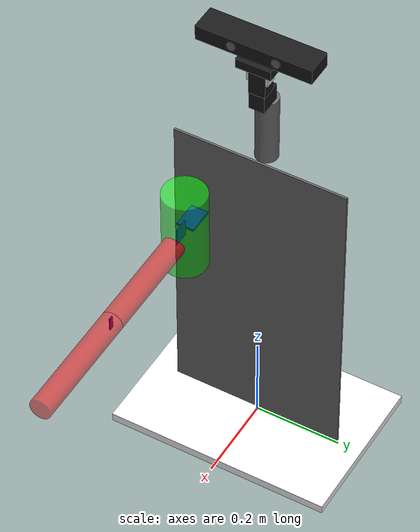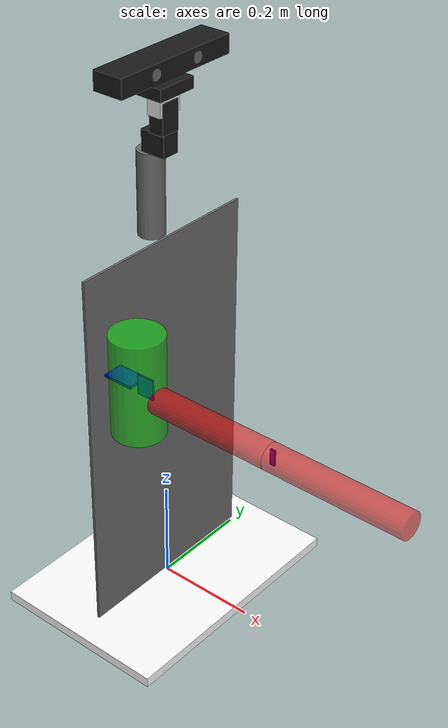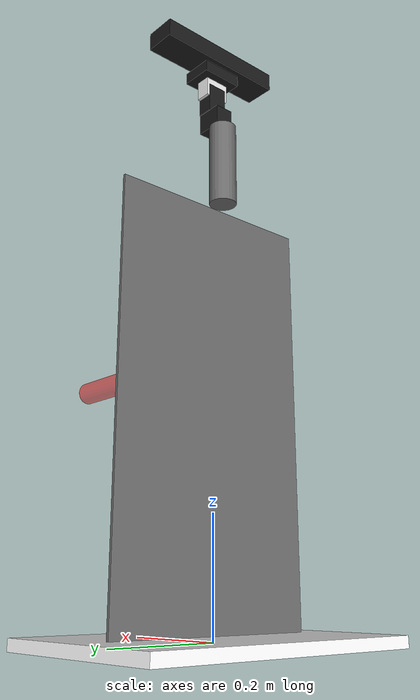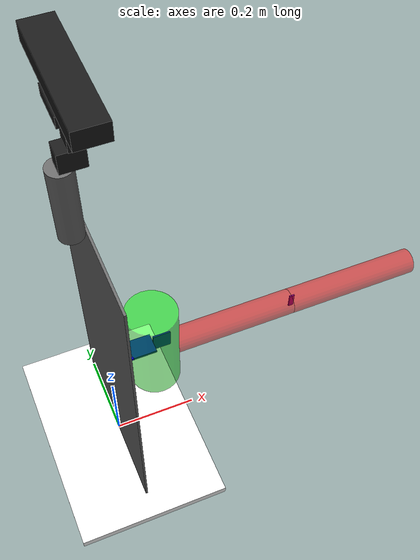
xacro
<?xml version="1.0"?>

<!-- XML namespaces -->
<robot xmlns:sensor="http://playerstage.sourceforge.net/gazebo/xmlschema/#sensor"
       xmlns:controller="http://playerstage.sourceforge.net/gazebo/xmlschema/#controller"
       xmlns:interface="http://playerstage.sourceforge.net/gazebo/xmlschema/#interface"
       xmlns:xacro="http://ros.org/wiki/xacro"
	   name="pi_robot">

	<xacro:macro name="white">
		<material name="white">
			<color rgba="1.0 1.0 1.0 1.0"/>
		</material>
	</xacro:macro>

	<xacro:macro name="black">
		<material name="black">
			<color rgba="0.1 0.1 0.1 1.0"/>
		</material>
	</xacro:macro>

	<xacro:macro name="grey1">
		<material name="grey1">
			<color rgba="0.41 0.41 0.41 1.0"/>
		</material>
	</xacro:macro>

	<xacro:macro name="blue1">
		<material name="blue1">
			<color rgba="0 0 .8 1"/>
		</material>
	</xacro:macro>

	<xacro:macro name="green1">
		<material name="green1">
			<color rgba="0 1 0 0.5"/>
		</material>
	</xacro:macro>

	<xacro:macro name="red1">
	  <material name="red1">
	    <color rgba="1 0 0 0.5"/>
		</material>
	</xacro:macro>

	<xacro:macro name="ax12_color">
		<material name="ax12_color">
			<color rgba="0.1 0.1 0.1 1.0"/>
		</material>
	</xacro:macro>

	<xacro:macro name="bracket_color">
		<material name="bracket_color">
			<color rgba="0.9 0.9 0.9 1.0"/>
		</material>
	</xacro:macro>

	<xacro:macro name="my_box" params="name lwh xyz rpy mass material *rviz_color">
		<link name="${name}">
			<visual>
				<origin xyz="${xyz}" rpy="${rpy}" />
				<geometry>
					<box size="${lwh}" />
				</geometry>
			    <xacro:insert_block name="rviz_color" />
             </visual>
             <collision>
				<origin xyz="${xyz}" rpy="${rpy}" />
					<geometry>
						<box size="${lwh}" />
					</geometry>
             </collision>
             <xacro:default_inertial mass="${mass}" />
        </link>
        <xacro:default_gazebo name="${name}" material="${material}" />
	</xacro:macro>

	<xacro:macro name="my_cylinder" params="name l r xyz rpy mass material *rviz_color">
		<link name="${name}">
			<visual>
				<origin xyz="${xyz}" rpy="${rpy}" />
				<geometry>
					<cylinder length="${l}" radius="${r}"/>
				</geometry>
				<xacro:insert_block name="rviz_color" />
			</visual>
			<collision>
				<origin xyz="${xyz}" rpy="${rpy}" />
					<geometry>
						<cylinder length="${l}" radius="${r}" />
					</geometry>
			</collision>
			<xacro:default_inertial mass="${mass}" />
		</link>
        <xacro:default_gazebo name="${name}" material="${material}" />
	</xacro:macro>

    <xacro:macro name="default_gazebo" params="name material">
 		<gazebo reference="${name}">
			<material>${material}</material>
			<selfCollide>false</selfCollide>
			<turnGravityOff>true</turnGravityOff>
		</gazebo>
    </xacro:macro>

 	<!-- ============================   Body   ============================ -->

	<xacro:my_box name="base_link" lwh="0.36 0.52 0.02" xyz="0 0 0" rpy="0 0 0" mass="0.5" material="Gazebo/WhiteEmissive">
		<xacro:white />
	</xacro:my_box>

 	<xacro:my_box name="torso_link" lwh="0.005 0.4 0.75" xyz="0 0 0" rpy="0 0 0" mass="0.5" material="Gazebo/WhiteEmissive">
		<xacro:grey1 />
	</xacro:my_box>

	<xacro:my_box name="shoulder_pan_support_link" lwh="0.06 0.04 0.005" xyz="0 0 0" rpy="0 0 0" mass="0.5" material="Gazebo/WhiteEmissive">
		<xacro:blue1 />
	</xacro:my_box>

 	<xacro:my_cylinder name="shoulder_pan_link" l="0.2" r="0.05" xyz="0 0 0" rpy="0 0 0" mass="0.5" material="Gazebo/WhiteEmissive">
		<xacro:green1 />
	</xacro:my_cylinder>

	<xacro:my_box name="shoulder_tilt_support_link" lwh="0.035 0.003 0.04" xyz="0 0 0" rpy="0 0 0" mass="0.5" material="Gazebo/WhiteEmissive">
		<xacro:blue1 />
	</xacro:my_box>

	<xacro:my_box name="shoulder_tilt_link" lwh="0.01 0.003 0.03" xyz="0 0 -0.015" rpy="0 0 0" mass="0.5" material="Gazebo/WhiteEmissive">
		<xacro:red1 />
	</xacro:my_box>

	<xacro:my_cylinder name="upper_arm_link" l="0.27" r="0.025" xyz="0.135 0 0" rpy="0 1.57 0" mass="0.5" material="Gazebo/WhiteEmissive">
		<xacro:red1 />
	</xacro:my_cylinder>

	<xacro:my_box name="elbow_tilt_link" lwh="0.01 0.003 0.03" xyz="0.005 0 0" rpy="0 0 0" mass="0.5" material="Gazebo/WhiteEmissive">
		<xacro:blue1 />
	</xacro:my_box>

	<xacro:my_cylinder name="forearm_link" l="0.27" r="0.025" xyz="0.135 0 0" rpy="0 1.57 0" mass="0.5" material="Gazebo/WhiteEmissive">
		<xacro:red1 />
	</xacro:my_cylinder>

	<!-- head links -->
	<xacro:my_cylinder name="lower_neck_link" l="0.16" r="0.025" xyz="0 0 0" rpy="0 0 0" mass="0.05" material="Gazebo/WhiteEmissive">
		<xacro:grey1 />
	</xacro:my_cylinder>

	<xacro:my_box name="upper_neck_link" lwh="0.028 0.048 0.037" xyz="0 0 0.01" rpy="0 0 0" mass="0.05" material="Gazebo/WhiteEmissive">
		<xacro:bracket_color />
	</xacro:my_box>

	<xacro:my_box name="head_pan_link" lwh="0.05 0.035 0.04" xyz="0 0 0" rpy="0 0 0" mass="0.055" material="Gazebo/FlatBlack">
		<xacro:ax12_color />
	</xacro:my_box>

	<xacro:my_box name="head_tilt_link" lwh="0.03 0.038 0.057" xyz="0 0 0" rpy="0 0 0" mass="0.055" material="Gazebo/FlatBlack">
		<xacro:ax12_color />
	</xacro:my_box>

	<xacro:my_box name="head_base_link" lwh="0.06 0.08 0.022" xyz="0 0 00" rpy="0 0 0" mass="0.1" material="Gazebo/FlatBlack">
		<xacro:black />
	</xacro:my_box>

	<xacro:my_cylinder name="head_post_link" l="0.012" r="0.005" xyz="0 0 00" rpy="0 0 0" mass="0.1" material="Gazebo/WhiteEmissive">
		<xacro:grey1 />
	</xacro:my_cylinder>

	<xacro:my_box name="head_link" lwh="0.06 0.26 0.035" xyz="0 0 00" rpy="0 0 0" mass="0.8" material="Gazebo/FlatBlack">
		<xacro:black />
	</xacro:my_box>

	<xacro:my_cylinder name="left_eye_link" l="0.01" r="0.01" xyz="0 0 00" rpy="0 0 0" mass="0.001" material="Gazebo/WhiteEmissive">
		<xacro:grey1 />
	</xacro:my_cylinder>

	<xacro:my_cylinder name="right_eye_link" l="0.01" r="0.01" xyz="0 0 00" rpy="0 0 0" mass="0.001" material="Gazebo/WhiteEmissive">
		<xacro:grey1 />
	</xacro:my_cylinder>
 	<!-- ============================   Arms   ============================ -->

	<!-- =================== Joint Definitions ==================== -->

	<!-- head joints -->
	<joint name="lower_neck_joint" type="fixed">
    	<parent link="torso_link" />
    	<child link="lower_neck_link" />
    	<origin xyz="-0.0275 0 0.455" rpy="0 0 0" />
	</joint>

	<joint name="head_pan_servo_joint" type="fixed">
    	<parent link="lower_neck_link" />
    	<child link="head_pan_link" />
    	<origin xyz="0.02 0 0.1" rpy="0 0 0" />
	</joint>

	<joint name="head_pan_joint" type="revolute">
    	<parent link="head_pan_link" />
    	<child link="head_tilt_link" />
    	<origin xyz="0.01 0 0.048" rpy="0 0 0" />
    	<axis xyz="0 0 1" />
    	<limit lower="-3.1416" upper="3.1416" effort="10" velocity="3" />
      	<dynamics damping="0.0"/>
	</joint>

 	<joint name="head_tilt_joint" type="revolute">
    	<parent link="head_tilt_link" />
    	<child link="upper_neck_link" />
    	<origin xyz="0 0 0.013" rpy="0 0 0" />
    	<axis xyz="0 1 0" />
    	<limit lower="-1.57" upper="1.57" effort="10" velocity="3" />
      	<dynamics damping="0.0"/>
	</joint>

 	<joint name="upper_neck_joint" type="fixed">
    	<parent link="upper_neck_link" />
    	<child link="head_base_link" />
    	<origin xyz="0 0 0.040" rpy="0 0 0" />
	</joint>

	<joint name="head_base_joint" type="fixed">
    	<parent link="head_base_link" />
    	<child link="head_post_link" />
    	<origin xyz="0 0 0.016" rpy="0 0 0" />
	</joint>

	<joint name="head_joint" type="fixed">
    	<parent link="head_post_link" />
    	<child link="head_link" />
    	<origin xyz="0 0 0.0235" rpy="0 0 0" />
	</joint>

	<joint name="left_eye_joint" type="fixed">
    	<parent link="head_link" />
    	<child link="left_eye_link" />
    	<origin xyz="0.026 0.05 0" rpy="0 1.57 0" />
	</joint>

	<joint name="right_eye_joint" type="fixed">
    	<parent link="head_link" />
    	<child link="right_eye_link" />
    	<origin xyz="0.026 -0.05 0" rpy="0 1.57 0" />
	</joint>

	<!-- arm joints -->
	<joint name="forearm_roll_joint" type="revolute">
	  <parent link="elbow_tilt_link" />
	  <child link="forearm_link" />
	  <axis xyz="0.135 0 0"/>
	  <origin xyz="0 0 0" rpy="0 0 0" />
	  <limit lower="-1.0" upper="1.0" effort="1.0" velocity="1.0" />
	</joint>

	<joint name="elbow_tilt_joint" type="revolute">
	  <parent link="upper_arm_link" />
	  <child link="elbow_tilt_link" />
	  <axis xyz="0 1 0"/>
	  <origin xyz="0.27 0 0" rpy="0 0 0" />
	  <limit lower="-1.0" upper="1.0" effort="1.0" velocity="1.0" />
	</joint>

	<joint name="upper_arm_roll_joint" type="revolute">
	  <parent link="shoulder_tilt_link" />
	  <child link="upper_arm_link" />
	  <axis xyz="0.135 0 0"/>
	  <origin xyz="0 0 0" rpy="0 0 0" />
	  <limit lower="-1.0" upper="1.0" effort="1.0" velocity="1.0" />
	</joint>

	<joint name="shoulder_tilt_joint" type="revolute">
	  <parent link="shoulder_tilt_support_link" />
	  <child link="shoulder_tilt_link" />
	  <axis xyz="0 1 0"/>
	  <origin xyz="0 0 -0.015" rpy="0 0 0" />
	  <limit lower="-1.0" upper="1.0" effort="1.0" velocity="1.0" />
	</joint>

	<joint name="shoulder_tilt_support_joint" type="fixed">
	  <parent link="shoulder_pan_link" />
	  <child link="shoulder_tilt_support_link" />
	  <origin xyz="0.0175 0.0 0" rpy="0 0 0" />
	</joint>

	<joint name="shoulder_pan_joint" type="revolute">
	  <parent link="shoulder_pan_support_link" />
	  <child link="shoulder_pan_link" />
	  <axis xyz="0.0 0 1"/>
	  <origin xyz="0.03 0 0" rpy="0 0 0" />
	  <limit lower="-1.0" upper="1.0" effort="1.0" velocity="1.0" />
	</joint>

	<joint name="shoulder_pan_support_joint" type="fixed">
	  <parent link="torso_link" />
	  <child link="shoulder_pan_support_link" />
	  <origin xyz="0.0325 -0.14 0.173" rpy="0 0 0" />
	</joint>

	<joint name="torso_joint" type="fixed">
	  <parent link="base_link" />
	  <child link="torso_link" />
	  <origin xyz="0 0 0.375" rpy="0 0 0" />
	</joint>

	<gazebo reference="maggie">
  	</gazebo>
</robot>
